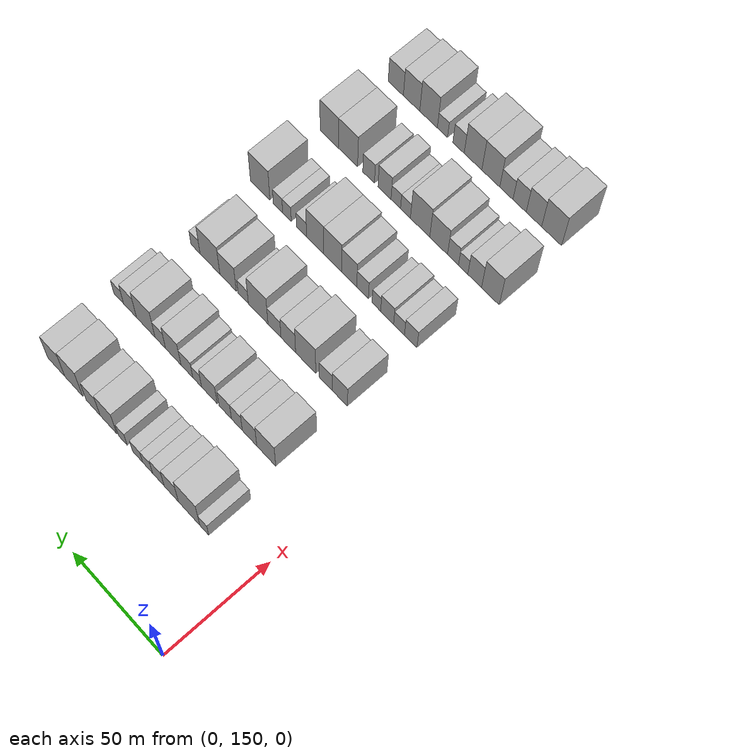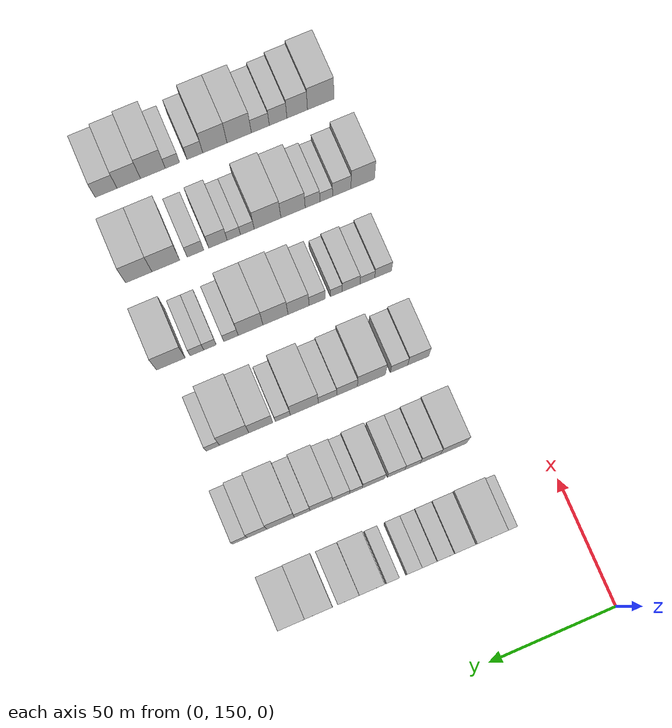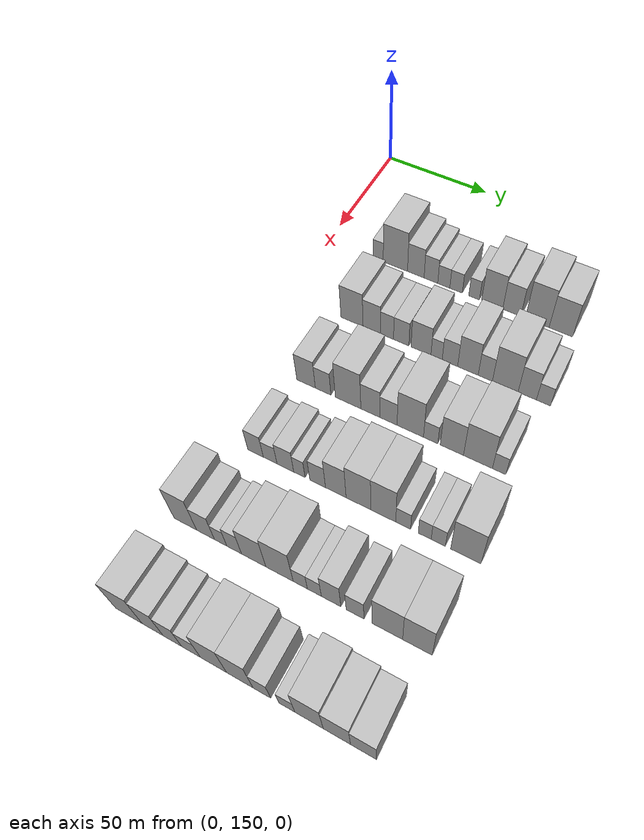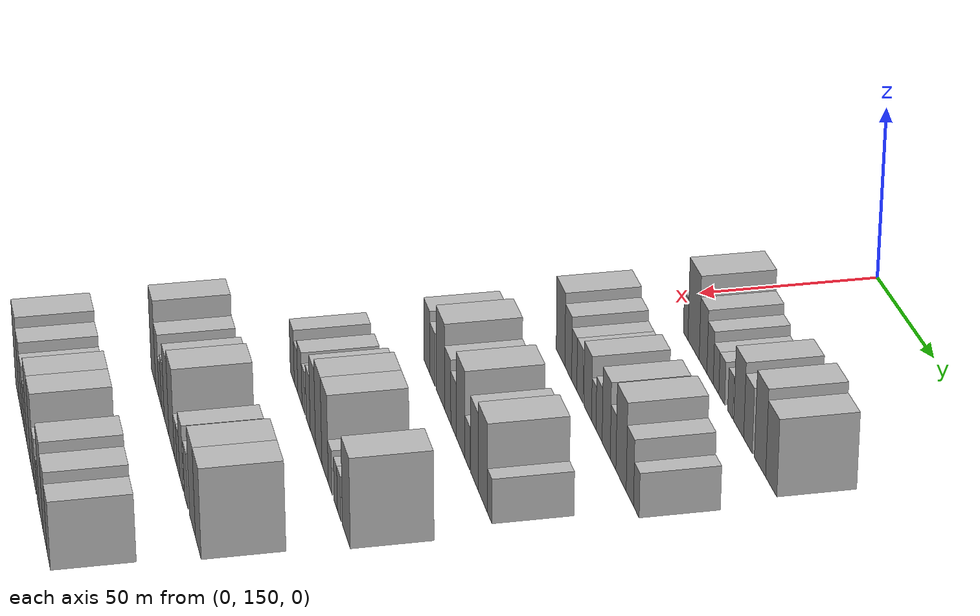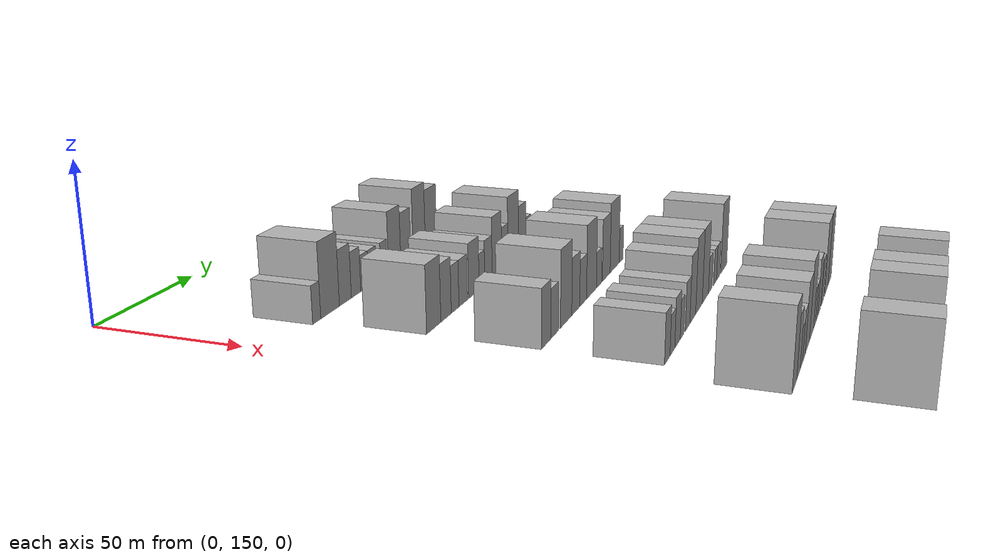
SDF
<sdf version="1.6">
 <world name="default">
  <model name="building_76">
   <static>1</static>
   <pose>50.0000 174.6142 0 0.000000 0.000000 0.000000</pose>
   <link name="link">
    <pose>0 0 6.00 0 0 0</pose>
    <collision name="collision"><geometry><box><size>20.0000 4.9379 12.0000</size></box></geometry></collision>
    <visual name="visual">
     <cast_shadows>0</cast_shadows>
     <geometry><box><size>20.0000 4.9379 12.0000</size></box></geometry>
     <material>
      <script>
       <uri>model://HANNAS_wall/materials/scripts</uri>
       <uri>model://HANNAS_wall/materials/textures</uri>
       <name>vrc/HANNAS_wall</name>
      </script>
     </material>
    </visual>
   </link>
  </model>
  <model name="building_77">
   <static>1</static>
   <pose>50.0000 183.0094 0 0.000000 0.000000 0.000000</pose>
   <link name="link">
    <pose>0 0 12.00 0 0 0</pose>
    <collision name="collision"><geometry><box><size>20.0000 11.8525 24.0000</size></box></geometry></collision>
    <visual name="visual">
     <cast_shadows>0</cast_shadows>
     <geometry><box><size>20.0000 11.8525 24.0000</size></box></geometry>
     <material>
      <script>
       <uri>model://HANNAS_wall/materials/scripts</uri>
       <uri>model://HANNAS_wall/materials/textures</uri>
       <name>vrc/HANNAS_wall</name>
      </script>
     </material>
    </visual>
   </link>
  </model>
  <model name="building_78">
   <static>1</static>
   <pose>50.0000 192.9202 0 0.000000 0.000000 0.000000</pose>
   <link name="link">
    <pose>0 0 9.00 0 0 0</pose>
    <collision name="collision"><geometry><box><size>20.0000 7.9690 18.0000</size></box></geometry></collision>
    <visual name="visual">
     <cast_shadows>0</cast_shadows>
     <geometry><box><size>20.0000 7.9690 18.0000</size></box></geometry>
     <material>
      <script>
       <uri>model://HANNAS_wall/materials/scripts</uri>
       <uri>model://HANNAS_wall/materials/textures</uri>
       <name>vrc/HANNAS_wall</name>
      </script>
     </material>
    </visual>
   </link>
  </model>
  <model name="building_79">
   <static>1</static>
   <pose>50.0000 200.1594 0 0.000000 0.000000 0.000000</pose>
   <link name="link">
    <pose>0 0 7.50 0 0 0</pose>
    <collision name="collision"><geometry><box><size>20.0000 6.5095 15.0000</size></box></geometry></collision>
    <visual name="visual">
     <cast_shadows>0</cast_shadows>
     <geometry><box><size>20.0000 6.5095 15.0000</size></box></geometry>
     <material>
      <script>
       <uri>model://HANNAS_wall/materials/scripts</uri>
       <uri>model://HANNAS_wall/materials/textures</uri>
       <name>vrc/HANNAS_wall</name>
      </script>
     </material>
    </visual>
   </link>
  </model>
  <model name="building_80">
   <static>1</static>
   <pose>50.0000 206.2583 0 0.000000 0.000000 0.000000</pose>
   <link name="link">
    <pose>0 0 6.00 0 0 0</pose>
    <collision name="collision"><geometry><box><size>20.0000 5.6883 12.0000</size></box></geometry></collision>
    <visual name="visual">
     <cast_shadows>0</cast_shadows>
     <geometry><box><size>20.0000 5.6883 12.0000</size></box></geometry>
     <material>
      <script>
       <uri>model://HANNAS_wall/materials/scripts</uri>
       <uri>model://HANNAS_wall/materials/textures</uri>
       <name>vrc/HANNAS_wall</name>
      </script>
     </material>
    </visual>
   </link>
  </model>
  <model name="building_81">
   <static>1</static>
   <pose>50.0000 212.0205 0 0.000000 0.000000 0.000000</pose>
   <link name="link">
    <pose>0 0 6.00 0 0 0</pose>
    <collision name="collision"><geometry><box><size>20.0000 5.8362 12.0000</size></box></geometry></collision>
    <visual name="visual">
     <cast_shadows>0</cast_shadows>
     <geometry><box><size>20.0000 5.8362 12.0000</size></box></geometry>
     <material>
      <script>
       <uri>model://HANNAS_wall/materials/scripts</uri>
       <uri>model://HANNAS_wall/materials/textures</uri>
       <name>vrc/HANNAS_wall</name>
      </script>
     </material>
    </visual>
   </link>
  </model>
  <model name="building_82">
   <static>1</static>
   <pose>50.0000 220.4087 0 0.000000 0.000000 0.000000</pose>
   <link name="link">
    <pose>0 0 6.00 0 0 0</pose>
    <collision name="collision"><geometry><box><size>20.0000 4.9402 12.0000</size></box></geometry></collision>
    <visual name="visual">
     <cast_shadows>0</cast_shadows>
     <geometry><box><size>20.0000 4.9402 12.0000</size></box></geometry>
     <material>
      <script>
       <uri>model://HANNAS_wall/materials/scripts</uri>
       <uri>model://HANNAS_wall/materials/textures</uri>
       <name>vrc/HANNAS_wall</name>
      </script>
     </material>
    </visual>
   </link>
  </model>
  <model name="building_83">
   <static>1</static>
   <pose>50.0000 228.6962 0 0.000000 0.000000 0.000000</pose>
   <link name="link">
    <pose>0 0 10.50 0 0 0</pose>
    <collision name="collision"><geometry><box><size>20.0000 9.6349 21.0000</size></box></geometry></collision>
    <visual name="visual">
     <cast_shadows>0</cast_shadows>
     <geometry><box><size>20.0000 9.6349 21.0000</size></box></geometry>
     <material>
      <script>
       <uri>model://HANNAS_wall/materials/scripts</uri>
       <uri>model://HANNAS_wall/materials/textures</uri>
       <name>vrc/HANNAS_wall</name>
      </script>
     </material>
    </visual>
   </link>
  </model>
  <model name="building_84">
   <static>1</static>
   <pose>50.0000 237.5897 0 0.000000 0.000000 0.000000</pose>
   <link name="link">
    <pose>0 0 9.00 0 0 0</pose>
    <collision name="collision"><geometry><box><size>20.0000 8.1520 18.0000</size></box></geometry></collision>
    <visual name="visual">
     <cast_shadows>0</cast_shadows>
     <geometry><box><size>20.0000 8.1520 18.0000</size></box></geometry>
     <material>
      <script>
       <uri>model://HANNAS_wall/materials/scripts</uri>
       <uri>model://HANNAS_wall/materials/textures</uri>
       <name>vrc/HANNAS_wall</name>
      </script>
     </material>
    </visual>
   </link>
  </model>
  <model name="building_85">
   <static>1</static>
   <pose>50.0000 248.8971 0 0.000000 0.000000 0.000000</pose>
   <link name="link">
    <pose>0 0 12.00 0 0 0</pose>
    <collision name="collision"><geometry><box><size>20.0000 10.4628 24.0000</size></box></geometry></collision>
    <visual name="visual">
     <cast_shadows>0</cast_shadows>
     <geometry><box><size>20.0000 10.4628 24.0000</size></box></geometry>
     <material>
      <script>
       <uri>model://HANNAS_wall/materials/scripts</uri>
       <uri>model://HANNAS_wall/materials/textures</uri>
       <name>vrc/HANNAS_wall</name>
      </script>
     </material>
    </visual>
   </link>
  </model>
  <model name="building_86">
   <static>1</static>
   <pose>50.0000 259.2535 0 0.000000 0.000000 0.000000</pose>
   <link name="link">
    <pose>0 0 10.50 0 0 0</pose>
    <collision name="collision"><geometry><box><size>20.0000 10.2500 21.0000</size></box></geometry></collision>
    <visual name="visual">
     <cast_shadows>0</cast_shadows>
     <geometry><box><size>20.0000 10.2500 21.0000</size></box></geometry>
     <material>
      <script>
       <uri>model://HANNAS_wall/materials/scripts</uri>
       <uri>model://HANNAS_wall/materials/textures</uri>
       <name>vrc/HANNAS_wall</name>
      </script>
     </material>
    </visual>
   </link>
  </model>
  <model name="building_203">
   <static>1</static>
   <pose>85.0000 180.6610 0 0.000000 0.000000 0.000000</pose>
   <link name="link">
    <pose>0 0 10.50 0 0 0</pose>
    <collision name="collision"><geometry><box><size>20.0000 10.4393 21.0000</size></box></geometry></collision>
    <visual name="visual">
     <cast_shadows>0</cast_shadows>
     <geometry><box><size>20.0000 10.4393 21.0000</size></box></geometry>
     <material>
      <script>
       <uri>model://HANNAS_wall/materials/scripts</uri>
       <uri>model://HANNAS_wall/materials/textures</uri>
       <name>vrc/HANNAS_wall</name>
      </script>
     </material>
    </visual>
   </link>
  </model>
  <model name="building_204">
   <static>1</static>
   <pose>85.0000 189.8858 0 0.000000 0.000000 0.000000</pose>
   <link name="link">
    <pose>0 0 9.00 0 0 0</pose>
    <collision name="collision"><geometry><box><size>20.0000 8.0103 18.0000</size></box></geometry></collision>
    <visual name="visual">
     <cast_shadows>0</cast_shadows>
     <geometry><box><size>20.0000 8.0103 18.0000</size></box></geometry>
     <material>
      <script>
       <uri>model://HANNAS_wall/materials/scripts</uri>
       <uri>model://HANNAS_wall/materials/textures</uri>
       <name>vrc/HANNAS_wall</name>
      </script>
     </material>
    </visual>
   </link>
  </model>
  <model name="building_205">
   <static>1</static>
   <pose>85.0000 196.9452 0 0.000000 0.000000 0.000000</pose>
   <link name="link">
    <pose>0 0 7.50 0 0 0</pose>
    <collision name="collision"><geometry><box><size>20.0000 6.1084 15.0000</size></box></geometry></collision>
    <visual name="visual">
     <cast_shadows>0</cast_shadows>
     <geometry><box><size>20.0000 6.1084 15.0000</size></box></geometry>
     <material>
      <script>
       <uri>model://HANNAS_wall/materials/scripts</uri>
       <uri>model://HANNAS_wall/materials/textures</uri>
       <name>vrc/HANNAS_wall</name>
      </script>
     </material>
    </visual>
   </link>
  </model>
  <model name="building_206">
   <static>1</static>
   <pose>85.0000 203.4904 0 0.000000 0.000000 0.000000</pose>
   <link name="link">
    <pose>0 0 7.50 0 0 0</pose>
    <collision name="collision"><geometry><box><size>20.0000 6.9820 15.0000</size></box></geometry></collision>
    <visual name="visual">
     <cast_shadows>0</cast_shadows>
     <geometry><box><size>20.0000 6.9820 15.0000</size></box></geometry>
     <material>
      <script>
       <uri>model://HANNAS_wall/materials/scripts</uri>
       <uri>model://HANNAS_wall/materials/textures</uri>
       <name>vrc/HANNAS_wall</name>
      </script>
     </material>
    </visual>
   </link>
  </model>
  <model name="building_207">
   <static>1</static>
   <pose>85.0000 212.4472 0 0.000000 0.000000 0.000000</pose>
   <link name="link">
    <pose>0 0 9.00 0 0 0</pose>
    <collision name="collision"><geometry><box><size>20.0000 8.9316 18.0000</size></box></geometry></collision>
    <visual name="visual">
     <cast_shadows>0</cast_shadows>
     <geometry><box><size>20.0000 8.9316 18.0000</size></box></geometry>
     <material>
      <script>
       <uri>model://HANNAS_wall/materials/scripts</uri>
       <uri>model://HANNAS_wall/materials/textures</uri>
       <name>vrc/HANNAS_wall</name>
      </script>
     </material>
    </visual>
   </link>
  </model>
  <model name="building_208">
   <static>1</static>
   <pose>85.0000 219.4052 0 0.000000 0.000000 0.000000</pose>
   <link name="link">
    <pose>0 0 6.00 0 0 0</pose>
    <collision name="collision"><geometry><box><size>20.0000 4.9845 12.0000</size></box></geometry></collision>
    <visual name="visual">
     <cast_shadows>0</cast_shadows>
     <geometry><box><size>20.0000 4.9845 12.0000</size></box></geometry>
     <material>
      <script>
       <uri>model://HANNAS_wall/materials/scripts</uri>
       <uri>model://HANNAS_wall/materials/textures</uri>
       <name>vrc/HANNAS_wall</name>
      </script>
     </material>
    </visual>
   </link>
  </model>
  <model name="building_209">
   <static>1</static>
   <pose>85.0000 225.2908 0 0.000000 0.000000 0.000000</pose>
   <link name="link">
    <pose>0 0 7.50 0 0 0</pose>
    <collision name="collision"><geometry><box><size>20.0000 6.7866 15.0000</size></box></geometry></collision>
    <visual name="visual">
     <cast_shadows>0</cast_shadows>
     <geometry><box><size>20.0000 6.7866 15.0000</size></box></geometry>
     <material>
      <script>
       <uri>model://HANNAS_wall/materials/scripts</uri>
       <uri>model://HANNAS_wall/materials/textures</uri>
       <name>vrc/HANNAS_wall</name>
      </script>
     </material>
    </visual>
   </link>
  </model>
  <model name="building_210">
   <static>1</static>
   <pose>85.0000 233.1479 0 0.000000 0.000000 0.000000</pose>
   <link name="link">
    <pose>0 0 10.50 0 0 0</pose>
    <collision name="collision"><geometry><box><size>20.0000 8.9277 21.0000</size></box></geometry></collision>
    <visual name="visual">
     <cast_shadows>0</cast_shadows>
     <geometry><box><size>20.0000 8.9277 21.0000</size></box></geometry>
     <material>
      <script>
       <uri>model://HANNAS_wall/materials/scripts</uri>
       <uri>model://HANNAS_wall/materials/textures</uri>
       <name>vrc/HANNAS_wall</name>
      </script>
     </material>
    </visual>
   </link>
  </model>
  <model name="building_211">
   <static>1</static>
   <pose>85.0000 240.6714 0 0.000000 0.000000 0.000000</pose>
   <link name="link">
    <pose>0 0 7.50 0 0 0</pose>
    <collision name="collision"><geometry><box><size>20.0000 6.1194 15.0000</size></box></geometry></collision>
    <visual name="visual">
     <cast_shadows>0</cast_shadows>
     <geometry><box><size>20.0000 6.1194 15.0000</size></box></geometry>
     <material>
      <script>
       <uri>model://HANNAS_wall/materials/scripts</uri>
       <uri>model://HANNAS_wall/materials/textures</uri>
       <name>vrc/HANNAS_wall</name>
      </script>
     </material>
    </visual>
   </link>
  </model>
  <model name="building_212">
   <static>1</static>
   <pose>85.0000 249.1697 0 0.000000 0.000000 0.000000</pose>
   <link name="link">
    <pose>0 0 12.00 0 0 0</pose>
    <collision name="collision"><geometry><box><size>20.0000 10.8773 24.0000</size></box></geometry></collision>
    <visual name="visual">
     <cast_shadows>0</cast_shadows>
     <geometry><box><size>20.0000 10.8773 24.0000</size></box></geometry>
     <material>
      <script>
       <uri>model://HANNAS_wall/materials/scripts</uri>
       <uri>model://HANNAS_wall/materials/textures</uri>
       <name>vrc/HANNAS_wall</name>
      </script>
     </material>
    </visual>
   </link>
  </model>
  <model name="building_213">
   <static>1</static>
   <pose>85.0000 258.4288 0 0.000000 0.000000 0.000000</pose>
   <link name="link">
    <pose>0 0 9.00 0 0 0</pose>
    <collision name="collision"><geometry><box><size>20.0000 7.6409 18.0000</size></box></geometry></collision>
    <visual name="visual">
     <cast_shadows>0</cast_shadows>
     <geometry><box><size>20.0000 7.6409 18.0000</size></box></geometry>
     <material>
      <script>
       <uri>model://HANNAS_wall/materials/scripts</uri>
       <uri>model://HANNAS_wall/materials/textures</uri>
       <name>vrc/HANNAS_wall</name>
      </script>
     </material>
    </visual>
   </link>
  </model>
  <model name="building_214">
   <static>1</static>
   <pose>85.0000 265.1545 0 0.000000 0.000000 0.000000</pose>
   <link name="link">
    <pose>0 0 6.00 0 0 0</pose>
    <collision name="collision"><geometry><box><size>20.0000 5.8104 12.0000</size></box></geometry></collision>
    <visual name="visual">
     <cast_shadows>0</cast_shadows>
     <geometry><box><size>20.0000 5.8104 12.0000</size></box></geometry>
     <material>
      <script>
       <uri>model://HANNAS_wall/materials/scripts</uri>
       <uri>model://HANNAS_wall/materials/textures</uri>
       <name>vrc/HANNAS_wall</name>
      </script>
     </material>
    </visual>
   </link>
  </model>
  <model name="building_333">
   <static>1</static>
   <pose>120.0000 179.2663 0 0.000000 0.000000 0.000000</pose>
   <link name="link">
    <pose>0 0 9.00 0 0 0</pose>
    <collision name="collision"><geometry><box><size>20.0000 8.4396 18.0000</size></box></geometry></collision>
    <visual name="visual">
     <cast_shadows>0</cast_shadows>
     <geometry><box><size>20.0000 8.4396 18.0000</size></box></geometry>
     <material>
      <script>
       <uri>model://HANNAS_wall/materials/scripts</uri>
       <uri>model://HANNAS_wall/materials/textures</uri>
       <name>vrc/HANNAS_wall</name>
      </script>
     </material>
    </visual>
   </link>
  </model>
  <model name="building_334">
   <static>1</static>
   <pose>120.0000 186.9773 0 0.000000 0.000000 0.000000</pose>
   <link name="link">
    <pose>0 0 7.50 0 0 0</pose>
    <collision name="collision"><geometry><box><size>20.0000 6.9825 15.0000</size></box></geometry></collision>
    <visual name="visual">
     <cast_shadows>0</cast_shadows>
     <geometry><box><size>20.0000 6.9825 15.0000</size></box></geometry>
     <material>
      <script>
       <uri>model://HANNAS_wall/materials/scripts</uri>
       <uri>model://HANNAS_wall/materials/textures</uri>
       <name>vrc/HANNAS_wall</name>
      </script>
     </material>
    </visual>
   </link>
  </model>
  <model name="building_335">
   <static>1</static>
   <pose>120.0000 198.1035 0 0.000000 0.000000 0.000000</pose>
   <link name="link">
    <pose>0 0 12.00 0 0 0</pose>
    <collision name="collision"><geometry><box><size>20.0000 11.2697 24.0000</size></box></geometry></collision>
    <visual name="visual">
     <cast_shadows>0</cast_shadows>
     <geometry><box><size>20.0000 11.2697 24.0000</size></box></geometry>
     <material>
      <script>
       <uri>model://HANNAS_wall/materials/scripts</uri>
       <uri>model://HANNAS_wall/materials/textures</uri>
       <name>vrc/HANNAS_wall</name>
      </script>
     </material>
    </visual>
   </link>
  </model>
  <model name="building_336">
   <static>1</static>
   <pose>120.0000 207.8507 0 0.000000 0.000000 0.000000</pose>
   <link name="link">
    <pose>0 0 9.00 0 0 0</pose>
    <collision name="collision"><geometry><box><size>20.0000 8.2248 18.0000</size></box></geometry></collision>
    <visual name="visual">
     <cast_shadows>0</cast_shadows>
     <geometry><box><size>20.0000 8.2248 18.0000</size></box></geometry>
     <material>
      <script>
       <uri>model://HANNAS_wall/materials/scripts</uri>
       <uri>model://HANNAS_wall/materials/textures</uri>
       <name>vrc/HANNAS_wall</name>
      </script>
     </material>
    </visual>
   </link>
  </model>
  <model name="building_337">
   <static>1</static>
   <pose>120.0000 215.6633 0 0.000000 0.000000 0.000000</pose>
   <link name="link">
    <pose>0 0 7.50 0 0 0</pose>
    <collision name="collision"><geometry><box><size>20.0000 7.4002 15.0000</size></box></geometry></collision>
    <visual name="visual">
     <cast_shadows>0</cast_shadows>
     <geometry><box><size>20.0000 7.4002 15.0000</size></box></geometry>
     <material>
      <script>
       <uri>model://HANNAS_wall/materials/scripts</uri>
       <uri>model://HANNAS_wall/materials/textures</uri>
       <name>vrc/HANNAS_wall</name>
      </script>
     </material>
    </visual>
   </link>
  </model>
  <model name="building_338">
   <static>1</static>
   <pose>120.0000 224.9422 0 0.000000 0.000000 0.000000</pose>
   <link name="link">
    <pose>0 0 12.00 0 0 0</pose>
    <collision name="collision"><geometry><box><size>20.0000 11.1576 24.0000</size></box></geometry></collision>
    <visual name="visual">
     <cast_shadows>0</cast_shadows>
     <geometry><box><size>20.0000 11.1576 24.0000</size></box></geometry>
     <material>
      <script>
       <uri>model://HANNAS_wall/materials/scripts</uri>
       <uri>model://HANNAS_wall/materials/textures</uri>
       <name>vrc/HANNAS_wall</name>
      </script>
     </material>
    </visual>
   </link>
  </model>
  <model name="building_339">
   <static>1</static>
   <pose>120.0000 233.5014 0 0.000000 0.000000 0.000000</pose>
   <link name="link">
    <pose>0 0 6.00 0 0 0</pose>
    <collision name="collision"><geometry><box><size>20.0000 5.9607 12.0000</size></box></geometry></collision>
    <visual name="visual">
     <cast_shadows>0</cast_shadows>
     <geometry><box><size>20.0000 5.9607 12.0000</size></box></geometry>
     <material>
      <script>
       <uri>model://HANNAS_wall/materials/scripts</uri>
       <uri>model://HANNAS_wall/materials/textures</uri>
       <name>vrc/HANNAS_wall</name>
      </script>
     </material>
    </visual>
   </link>
  </model>
  <model name="building_340">
   <static>1</static>
   <pose>120.0000 242.2394 0 0.000000 0.000000 0.000000</pose>
   <link name="link">
    <pose>0 0 10.50 0 0 0</pose>
    <collision name="collision"><geometry><box><size>20.0000 9.5153 21.0000</size></box></geometry></collision>
    <visual name="visual">
     <cast_shadows>0</cast_shadows>
     <geometry><box><size>20.0000 9.5153 21.0000</size></box></geometry>
     <material>
      <script>
       <uri>model://HANNAS_wall/materials/scripts</uri>
       <uri>model://HANNAS_wall/materials/textures</uri>
       <name>vrc/HANNAS_wall</name>
      </script>
     </material>
    </visual>
   </link>
  </model>
  <model name="building_341">
   <static>1</static>
   <pose>120.0000 252.8140 0 0.000000 0.000000 0.000000</pose>
   <link name="link">
    <pose>0 0 12.00 0 0 0</pose>
    <collision name="collision"><geometry><box><size>20.0000 11.6339 24.0000</size></box></geometry></collision>
    <visual name="visual">
     <cast_shadows>0</cast_shadows>
     <geometry><box><size>20.0000 11.6339 24.0000</size></box></geometry>
     <material>
      <script>
       <uri>model://HANNAS_wall/materials/scripts</uri>
       <uri>model://HANNAS_wall/materials/textures</uri>
       <name>vrc/HANNAS_wall</name>
      </script>
     </material>
    </visual>
   </link>
  </model>
  <model name="building_342">
   <static>1</static>
   <pose>120.0000 261.3128 0 0.000000 0.000000 0.000000</pose>
   <link name="link">
    <pose>0 0 6.00 0 0 0</pose>
    <collision name="collision"><geometry><box><size>20.0000 5.3636 12.0000</size></box></geometry></collision>
    <visual name="visual">
     <cast_shadows>0</cast_shadows>
     <geometry><box><size>20.0000 5.3636 12.0000</size></box></geometry>
     <material>
      <script>
       <uri>model://HANNAS_wall/materials/scripts</uri>
       <uri>model://HANNAS_wall/materials/textures</uri>
       <name>vrc/HANNAS_wall</name>
      </script>
     </material>
    </visual>
   </link>
  </model>
  <model name="building_453">
   <static>1</static>
   <pose>155.0000 178.1358 0 0.000000 0.000000 0.000000</pose>
   <link name="link">
    <pose>0 0 7.50 0 0 0</pose>
    <collision name="collision"><geometry><box><size>20.0000 6.8235 15.0000</size></box></geometry></collision>
    <visual name="visual">
     <cast_shadows>0</cast_shadows>
     <geometry><box><size>20.0000 6.8235 15.0000</size></box></geometry>
     <material>
      <script>
       <uri>model://HANNAS_wall/materials/scripts</uri>
       <uri>model://HANNAS_wall/materials/textures</uri>
       <name>vrc/HANNAS_wall</name>
      </script>
     </material>
    </visual>
   </link>
  </model>
  <model name="building_454">
   <static>1</static>
   <pose>155.0000 184.5303 0 0.000000 0.000000 0.000000</pose>
   <link name="link">
    <pose>0 0 6.00 0 0 0</pose>
    <collision name="collision"><geometry><box><size>20.0000 5.9654 12.0000</size></box></geometry></collision>
    <visual name="visual">
     <cast_shadows>0</cast_shadows>
     <geometry><box><size>20.0000 5.9654 12.0000</size></box></geometry>
     <material>
      <script>
       <uri>model://HANNAS_wall/materials/scripts</uri>
       <uri>model://HANNAS_wall/materials/textures</uri>
       <name>vrc/HANNAS_wall</name>
      </script>
     </material>
    </visual>
   </link>
  </model>
  <model name="building_455">
   <static>1</static>
   <pose>155.0000 191.0997 0 0.000000 0.000000 0.000000</pose>
   <link name="link">
    <pose>0 0 7.50 0 0 0</pose>
    <collision name="collision"><geometry><box><size>20.0000 7.1734 15.0000</size></box></geometry></collision>
    <visual name="visual">
     <cast_shadows>0</cast_shadows>
     <geometry><box><size>20.0000 7.1734 15.0000</size></box></geometry>
     <material>
      <script>
       <uri>model://HANNAS_wall/materials/scripts</uri>
       <uri>model://HANNAS_wall/materials/textures</uri>
       <name>vrc/HANNAS_wall</name>
      </script>
     </material>
    </visual>
   </link>
  </model>
  <model name="building_456">
   <static>1</static>
   <pose>155.0000 197.1026 0 0.000000 0.000000 0.000000</pose>
   <link name="link">
    <pose>0 0 6.00 0 0 0</pose>
    <collision name="collision"><geometry><box><size>20.0000 4.8324 12.0000</size></box></geometry></collision>
    <visual name="visual">
     <cast_shadows>0</cast_shadows>
     <geometry><box><size>20.0000 4.8324 12.0000</size></box></geometry>
     <material>
      <script>
       <uri>model://HANNAS_wall/materials/scripts</uri>
       <uri>model://HANNAS_wall/materials/textures</uri>
       <name>vrc/HANNAS_wall</name>
      </script>
     </material>
    </visual>
   </link>
  </model>
  <model name="building_457">
   <static>1</static>
   <pose>155.0000 204.8015 0 0.000000 0.000000 0.000000</pose>
   <link name="link">
    <pose>0 0 7.50 0 0 0</pose>
    <collision name="collision"><geometry><box><size>20.0000 6.5655 15.0000</size></box></geometry></collision>
    <visual name="visual">
     <cast_shadows>0</cast_shadows>
     <geometry><box><size>20.0000 6.5655 15.0000</size></box></geometry>
     <material>
      <script>
       <uri>model://HANNAS_wall/materials/scripts</uri>
       <uri>model://HANNAS_wall/materials/textures</uri>
       <name>vrc/HANNAS_wall</name>
      </script>
     </material>
    </visual>
   </link>
  </model>
  <model name="building_458">
   <static>1</static>
   <pose>155.0000 212.3435 0 0.000000 0.000000 0.000000</pose>
   <link name="link">
    <pose>0 0 10.50 0 0 0</pose>
    <collision name="collision"><geometry><box><size>20.0000 8.5185 21.0000</size></box></geometry></collision>
    <visual name="visual">
     <cast_shadows>0</cast_shadows>
     <geometry><box><size>20.0000 8.5185 21.0000</size></box></geometry>
     <material>
      <script>
       <uri>model://HANNAS_wall/materials/scripts</uri>
       <uri>model://HANNAS_wall/materials/textures</uri>
       <name>vrc/HANNAS_wall</name>
      </script>
     </material>
    </visual>
   </link>
  </model>
  <model name="building_459">
   <static>1</static>
   <pose>155.0000 221.6552 0 0.000000 0.000000 0.000000</pose>
   <link name="link">
    <pose>0 0 12.00 0 0 0</pose>
    <collision name="collision"><geometry><box><size>20.0000 10.1048 24.0000</size></box></geometry></collision>
    <visual name="visual">
     <cast_shadows>0</cast_shadows>
     <geometry><box><size>20.0000 10.1048 24.0000</size></box></geometry>
     <material>
      <script>
       <uri>model://HANNAS_wall/materials/scripts</uri>
       <uri>model://HANNAS_wall/materials/textures</uri>
       <name>vrc/HANNAS_wall</name>
      </script>
     </material>
    </visual>
   </link>
  </model>
  <model name="building_460">
   <static>1</static>
   <pose>155.0000 231.6649 0 0.000000 0.000000 0.000000</pose>
   <link name="link">
    <pose>0 0 12.00 0 0 0</pose>
    <collision name="collision"><geometry><box><size>20.0000 9.9147 24.0000</size></box></geometry></collision>
    <visual name="visual">
     <cast_shadows>0</cast_shadows>
     <geometry><box><size>20.0000 9.9147 24.0000</size></box></geometry>
     <material>
      <script>
       <uri>model://HANNAS_wall/materials/scripts</uri>
       <uri>model://HANNAS_wall/materials/textures</uri>
       <name>vrc/HANNAS_wall</name>
      </script>
     </material>
    </visual>
   </link>
  </model>
  <model name="building_461">
   <static>1</static>
   <pose>155.0000 239.5283 0 0.000000 0.000000 0.000000</pose>
   <link name="link">
    <pose>0 0 6.00 0 0 0</pose>
    <collision name="collision"><geometry><box><size>20.0000 5.8120 12.0000</size></box></geometry></collision>
    <visual name="visual">
     <cast_shadows>0</cast_shadows>
     <geometry><box><size>20.0000 5.8120 12.0000</size></box></geometry>
     <material>
      <script>
       <uri>model://HANNAS_wall/materials/scripts</uri>
       <uri>model://HANNAS_wall/materials/textures</uri>
       <name>vrc/HANNAS_wall</name>
      </script>
     </material>
    </visual>
   </link>
  </model>
  <model name="building_462">
   <static>1</static>
   <pose>155.0000 247.9316 0 0.000000 0.000000 0.000000</pose>
   <link name="link">
    <pose>0 0 6.00 0 0 0</pose>
    <collision name="collision"><geometry><box><size>20.0000 4.9946 12.0000</size></box></geometry></collision>
    <visual name="visual">
     <cast_shadows>0</cast_shadows>
     <geometry><box><size>20.0000 4.9946 12.0000</size></box></geometry>
     <material>
      <script>
       <uri>model://HANNAS_wall/materials/scripts</uri>
       <uri>model://HANNAS_wall/materials/textures</uri>
       <name>vrc/HANNAS_wall</name>
      </script>
     </material>
    </visual>
   </link>
  </model>
  <model name="building_463">
   <static>1</static>
   <pose>155.0000 253.1535 0 0.000000 0.000000 0.000000</pose>
   <link name="link">
    <pose>0 0 6.00 0 0 0</pose>
    <collision name="collision"><geometry><box><size>20.0000 5.4492 12.0000</size></box></geometry></collision>
    <visual name="visual">
     <cast_shadows>0</cast_shadows>
     <geometry><box><size>20.0000 5.4492 12.0000</size></box></geometry>
     <material>
      <script>
       <uri>model://HANNAS_wall/materials/scripts</uri>
       <uri>model://HANNAS_wall/materials/textures</uri>
       <name>vrc/HANNAS_wall</name>
      </script>
     </material>
    </visual>
   </link>
  </model>
  <model name="building_464">
   <static>1</static>
   <pose>155.0000 263.6030 0 0.000000 0.000000 0.000000</pose>
   <link name="link">
    <pose>0 0 12.00 0 0 0</pose>
    <collision name="collision"><geometry><box><size>20.0000 11.4498 24.0000</size></box></geometry></collision>
    <visual name="visual">
     <cast_shadows>0</cast_shadows>
     <geometry><box><size>20.0000 11.4498 24.0000</size></box></geometry>
     <material>
      <script>
       <uri>model://HANNAS_wall/materials/scripts</uri>
       <uri>model://HANNAS_wall/materials/textures</uri>
       <name>vrc/HANNAS_wall</name>
      </script>
     </material>
    </visual>
   </link>
  </model>
  <model name="building_583">
   <static>1</static>
   <pose>190.0000 171.2518 0 0.000000 0.000000 0.000000</pose>
   <link name="link">
    <pose>0 0 12.00 0 0 0</pose>
    <collision name="collision"><geometry><box><size>20.0000 9.6351 24.0000</size></box></geometry></collision>
    <visual name="visual">
     <cast_shadows>0</cast_shadows>
     <geometry><box><size>20.0000 9.6351 24.0000</size></box></geometry>
     <material>
      <script>
       <uri>model://HANNAS_wall/materials/scripts</uri>
       <uri>model://HANNAS_wall/materials/textures</uri>
       <name>vrc/HANNAS_wall</name>
      </script>
     </material>
    </visual>
   </link>
  </model>
  <model name="building_584">
   <static>1</static>
   <pose>190.0000 179.8290 0 0.000000 0.000000 0.000000</pose>
   <link name="link">
    <pose>0 0 9.00 0 0 0</pose>
    <collision name="collision"><geometry><box><size>20.0000 7.5194 18.0000</size></box></geometry></collision>
    <visual name="visual">
     <cast_shadows>0</cast_shadows>
     <geometry><box><size>20.0000 7.5194 18.0000</size></box></geometry>
     <material>
      <script>
       <uri>model://HANNAS_wall/materials/scripts</uri>
       <uri>model://HANNAS_wall/materials/textures</uri>
       <name>vrc/HANNAS_wall</name>
      </script>
     </material>
    </visual>
   </link>
  </model>
  <model name="building_585">
   <static>1</static>
   <pose>190.0000 186.1575 0 0.000000 0.000000 0.000000</pose>
   <link name="link">
    <pose>0 0 6.00 0 0 0</pose>
    <collision name="collision"><geometry><box><size>20.0000 5.1376 12.0000</size></box></geometry></collision>
    <visual name="visual">
     <cast_shadows>0</cast_shadows>
     <geometry><box><size>20.0000 5.1376 12.0000</size></box></geometry>
     <material>
      <script>
       <uri>model://HANNAS_wall/materials/scripts</uri>
       <uri>model://HANNAS_wall/materials/textures</uri>
       <name>vrc/HANNAS_wall</name>
      </script>
     </material>
    </visual>
   </link>
  </model>
  <model name="building_586">
   <static>1</static>
   <pose>190.0000 191.7456 0 0.000000 0.000000 0.000000</pose>
   <link name="link">
    <pose>0 0 7.50 0 0 0</pose>
    <collision name="collision"><geometry><box><size>20.0000 6.0387 15.0000</size></box></geometry></collision>
    <visual name="visual">
     <cast_shadows>0</cast_shadows>
     <geometry><box><size>20.0000 6.0387 15.0000</size></box></geometry>
     <material>
      <script>
       <uri>model://HANNAS_wall/materials/scripts</uri>
       <uri>model://HANNAS_wall/materials/textures</uri>
       <name>vrc/HANNAS_wall</name>
      </script>
     </material>
    </visual>
   </link>
  </model>
  <model name="building_587">
   <static>1</static>
   <pose>190.0000 199.7181 0 0.000000 0.000000 0.000000</pose>
   <link name="link">
    <pose>0 0 10.50 0 0 0</pose>
    <collision name="collision"><geometry><box><size>20.0000 9.9063 21.0000</size></box></geometry></collision>
    <visual name="visual">
     <cast_shadows>0</cast_shadows>
     <geometry><box><size>20.0000 9.9063 21.0000</size></box></geometry>
     <material>
      <script>
       <uri>model://HANNAS_wall/materials/scripts</uri>
       <uri>model://HANNAS_wall/materials/textures</uri>
       <name>vrc/HANNAS_wall</name>
      </script>
     </material>
    </visual>
   </link>
  </model>
  <model name="building_588">
   <static>1</static>
   <pose>190.0000 210.1047 0 0.000000 0.000000 0.000000</pose>
   <link name="link">
    <pose>0 0 12.00 0 0 0</pose>
    <collision name="collision"><geometry><box><size>20.0000 10.8668 24.0000</size></box></geometry></collision>
    <visual name="visual">
     <cast_shadows>0</cast_shadows>
     <geometry><box><size>20.0000 10.8668 24.0000</size></box></geometry>
     <material>
      <script>
       <uri>model://HANNAS_wall/materials/scripts</uri>
       <uri>model://HANNAS_wall/materials/textures</uri>
       <name>vrc/HANNAS_wall</name>
      </script>
     </material>
    </visual>
   </link>
  </model>
  <model name="building_589">
   <static>1</static>
   <pose>190.0000 218.3206 0 0.000000 0.000000 0.000000</pose>
   <link name="link">
    <pose>0 0 6.00 0 0 0</pose>
    <collision name="collision"><geometry><box><size>20.0000 5.5650 12.0000</size></box></geometry></collision>
    <visual name="visual">
     <cast_shadows>0</cast_shadows>
     <geometry><box><size>20.0000 5.5650 12.0000</size></box></geometry>
     <material>
      <script>
       <uri>model://HANNAS_wall/materials/scripts</uri>
       <uri>model://HANNAS_wall/materials/textures</uri>
       <name>vrc/HANNAS_wall</name>
      </script>
     </material>
    </visual>
   </link>
  </model>
  <model name="building_590">
   <static>1</static>
   <pose>190.0000 223.8029 0 0.000000 0.000000 0.000000</pose>
   <link name="link">
    <pose>0 0 6.00 0 0 0</pose>
    <collision name="collision"><geometry><box><size>20.0000 5.3996 12.0000</size></box></geometry></collision>
    <visual name="visual">
     <cast_shadows>0</cast_shadows>
     <geometry><box><size>20.0000 5.3996 12.0000</size></box></geometry>
     <material>
      <script>
       <uri>model://HANNAS_wall/materials/scripts</uri>
       <uri>model://HANNAS_wall/materials/textures</uri>
       <name>vrc/HANNAS_wall</name>
      </script>
     </material>
    </visual>
   </link>
  </model>
  <model name="building_591">
   <static>1</static>
   <pose>190.0000 230.2383 0 0.000000 0.000000 0.000000</pose>
   <link name="link">
    <pose>0 0 9.00 0 0 0</pose>
    <collision name="collision"><geometry><box><size>20.0000 7.4712 18.0000</size></box></geometry></collision>
    <visual name="visual">
     <cast_shadows>0</cast_shadows>
     <geometry><box><size>20.0000 7.4712 18.0000</size></box></geometry>
     <material>
      <script>
       <uri>model://HANNAS_wall/materials/scripts</uri>
       <uri>model://HANNAS_wall/materials/textures</uri>
       <name>vrc/HANNAS_wall</name>
      </script>
     </material>
    </visual>
   </link>
  </model>
  <model name="building_592">
   <static>1</static>
   <pose>190.0000 239.3441 0 0.000000 0.000000 0.000000</pose>
   <link name="link">
    <pose>0 0 7.50 0 0 0</pose>
    <collision name="collision"><geometry><box><size>20.0000 6.7404 15.0000</size></box></geometry></collision>
    <visual name="visual">
     <cast_shadows>0</cast_shadows>
     <geometry><box><size>20.0000 6.7404 15.0000</size></box></geometry>
     <material>
      <script>
       <uri>model://HANNAS_wall/materials/scripts</uri>
       <uri>model://HANNAS_wall/materials/textures</uri>
       <name>vrc/HANNAS_wall</name>
      </script>
     </material>
    </visual>
   </link>
  </model>
  <model name="building_593">
   <static>1</static>
   <pose>190.0000 251.3078 0 0.000000 0.000000 0.000000</pose>
   <link name="link">
    <pose>0 0 12.00 0 0 0</pose>
    <collision name="collision"><geometry><box><size>20.0000 11.1869 24.0000</size></box></geometry></collision>
    <visual name="visual">
     <cast_shadows>0</cast_shadows>
     <geometry><box><size>20.0000 11.1869 24.0000</size></box></geometry>
     <material>
      <script>
       <uri>model://HANNAS_wall/materials/scripts</uri>
       <uri>model://HANNAS_wall/materials/textures</uri>
       <name>vrc/HANNAS_wall</name>
      </script>
     </material>
    </visual>
   </link>
  </model>
  <model name="building_594">
   <static>1</static>
   <pose>190.0000 262.2255 0 0.000000 0.000000 0.000000</pose>
   <link name="link">
    <pose>0 0 12.00 0 0 0</pose>
    <collision name="collision"><geometry><box><size>20.0000 10.6484 24.0000</size></box></geometry></collision>
    <visual name="visual">
     <cast_shadows>0</cast_shadows>
     <geometry><box><size>20.0000 10.6484 24.0000</size></box></geometry>
     <material>
      <script>
       <uri>model://HANNAS_wall/materials/scripts</uri>
       <uri>model://HANNAS_wall/materials/textures</uri>
       <name>vrc/HANNAS_wall</name>
      </script>
     </material>
    </visual>
   </link>
  </model>
  <model name="building_714">
   <static>1</static>
   <pose>225.0000 173.4923 0 0.000000 0.000000 0.000000</pose>
   <link name="link">
    <pose>0 0 12.00 0 0 0</pose>
    <collision name="collision"><geometry><box><size>20.0000 10.8684 24.0000</size></box></geometry></collision>
    <visual name="visual">
     <cast_shadows>0</cast_shadows>
     <geometry><box><size>20.0000 10.8684 24.0000</size></box></geometry>
     <material>
      <script>
       <uri>model://HANNAS_wall/materials/scripts</uri>
       <uri>model://HANNAS_wall/materials/textures</uri>
       <name>vrc/HANNAS_wall</name>
      </script>
     </material>
    </visual>
   </link>
  </model>
  <model name="building_715">
   <static>1</static>
   <pose>225.0000 183.1485 0 0.000000 0.000000 0.000000</pose>
   <link name="link">
    <pose>0 0 10.50 0 0 0</pose>
    <collision name="collision"><geometry><box><size>20.0000 8.4441 21.0000</size></box></geometry></collision>
    <visual name="visual">
     <cast_shadows>0</cast_shadows>
     <geometry><box><size>20.0000 8.4441 21.0000</size></box></geometry>
     <material>
      <script>
       <uri>model://HANNAS_wall/materials/scripts</uri>
       <uri>model://HANNAS_wall/materials/textures</uri>
       <name>vrc/HANNAS_wall</name>
      </script>
     </material>
    </visual>
   </link>
  </model>
  <model name="building_716">
   <static>1</static>
   <pose>225.0000 191.0122 0 0.000000 0.000000 0.000000</pose>
   <link name="link">
    <pose>0 0 9.00 0 0 0</pose>
    <collision name="collision"><geometry><box><size>20.0000 7.2833 18.0000</size></box></geometry></collision>
    <visual name="visual">
     <cast_shadows>0</cast_shadows>
     <geometry><box><size>20.0000 7.2833 18.0000</size></box></geometry>
     <material>
      <script>
       <uri>model://HANNAS_wall/materials/scripts</uri>
       <uri>model://HANNAS_wall/materials/textures</uri>
       <name>vrc/HANNAS_wall</name>
      </script>
     </material>
    </visual>
   </link>
  </model>
  <model name="building_717">
   <static>1</static>
   <pose>225.0000 198.3285 0 0.000000 0.000000 0.000000</pose>
   <link name="link">
    <pose>0 0 7.50 0 0 0</pose>
    <collision name="collision"><geometry><box><size>20.0000 7.3492 15.0000</size></box></geometry></collision>
    <visual name="visual">
     <cast_shadows>0</cast_shadows>
     <geometry><box><size>20.0000 7.3492 15.0000</size></box></geometry>
     <material>
      <script>
       <uri>model://HANNAS_wall/materials/scripts</uri>
       <uri>model://HANNAS_wall/materials/textures</uri>
       <name>vrc/HANNAS_wall</name>
      </script>
     </material>
    </visual>
   </link>
  </model>
  <model name="building_718">
   <static>1</static>
   <pose>225.0000 207.0042 0 0.000000 0.000000 0.000000</pose>
   <link name="link">
    <pose>0 0 12.00 0 0 0</pose>
    <collision name="collision"><geometry><box><size>20.0000 10.0023 24.0000</size></box></geometry></collision>
    <visual name="visual">
     <cast_shadows>0</cast_shadows>
     <geometry><box><size>20.0000 10.0023 24.0000</size></box></geometry>
     <material>
      <script>
       <uri>model://HANNAS_wall/materials/scripts</uri>
       <uri>model://HANNAS_wall/materials/textures</uri>
       <name>vrc/HANNAS_wall</name>
      </script>
     </material>
    </visual>
   </link>
  </model>
  <model name="building_719">
   <static>1</static>
   <pose>225.0000 216.9769 0 0.000000 0.000000 0.000000</pose>
   <link name="link">
    <pose>0 0 12.00 0 0 0</pose>
    <collision name="collision"><geometry><box><size>20.0000 9.9431 24.0000</size></box></geometry></collision>
    <visual name="visual">
     <cast_shadows>0</cast_shadows>
     <geometry><box><size>20.0000 9.9431 24.0000</size></box></geometry>
     <material>
      <script>
       <uri>model://HANNAS_wall/materials/scripts</uri>
       <uri>model://HANNAS_wall/materials/textures</uri>
       <name>vrc/HANNAS_wall</name>
      </script>
     </material>
    </visual>
   </link>
  </model>
  <model name="building_720">
   <static>1</static>
   <pose>225.0000 225.1842 0 0.000000 0.000000 0.000000</pose>
   <link name="link">
    <pose>0 0 7.50 0 0 0</pose>
    <collision name="collision"><geometry><box><size>20.0000 6.4715 15.0000</size></box></geometry></collision>
    <visual name="visual">
     <cast_shadows>0</cast_shadows>
     <geometry><box><size>20.0000 6.4715 15.0000</size></box></geometry>
     <material>
      <script>
       <uri>model://HANNAS_wall/materials/scripts</uri>
       <uri>model://HANNAS_wall/materials/textures</uri>
       <name>vrc/HANNAS_wall</name>
      </script>
     </material>
    </visual>
   </link>
  </model>
  <model name="building_721">
   <static>1</static>
   <pose>225.0000 234.3267 0 0.000000 0.000000 0.000000</pose>
   <link name="link">
    <pose>0 0 6.00 0 0 0</pose>
    <collision name="collision"><geometry><box><size>20.0000 5.8136 12.0000</size></box></geometry></collision>
    <visual name="visual">
     <cast_shadows>0</cast_shadows>
     <geometry><box><size>20.0000 5.8136 12.0000</size></box></geometry>
     <material>
      <script>
       <uri>model://HANNAS_wall/materials/scripts</uri>
       <uri>model://HANNAS_wall/materials/textures</uri>
       <name>vrc/HANNAS_wall</name>
      </script>
     </material>
    </visual>
   </link>
  </model>
  <model name="building_722">
   <static>1</static>
   <pose>225.0000 242.2840 0 0.000000 0.000000 0.000000</pose>
   <link name="link">
    <pose>0 0 12.00 0 0 0</pose>
    <collision name="collision"><geometry><box><size>20.0000 10.1010 24.0000</size></box></geometry></collision>
    <visual name="visual">
     <cast_shadows>0</cast_shadows>
     <geometry><box><size>20.0000 10.1010 24.0000</size></box></geometry>
     <material>
      <script>
       <uri>model://HANNAS_wall/materials/scripts</uri>
       <uri>model://HANNAS_wall/materials/textures</uri>
       <name>vrc/HANNAS_wall</name>
      </script>
     </material>
    </visual>
   </link>
  </model>
  <model name="building_723">
   <static>1</static>
   <pose>225.0000 252.0890 0 0.000000 0.000000 0.000000</pose>
   <link name="link">
    <pose>0 0 10.50 0 0 0</pose>
    <collision name="collision"><geometry><box><size>20.0000 9.5090 21.0000</size></box></geometry></collision>
    <visual name="visual">
     <cast_shadows>0</cast_shadows>
     <geometry><box><size>20.0000 9.5090 21.0000</size></box></geometry>
     <material>
      <script>
       <uri>model://HANNAS_wall/materials/scripts</uri>
       <uri>model://HANNAS_wall/materials/textures</uri>
       <name>vrc/HANNAS_wall</name>
      </script>
     </material>
    </visual>
   </link>
  </model>
  <model name="building_724">
   <static>1</static>
   <pose>225.0000 261.2862 0 0.000000 0.000000 0.000000</pose>
   <link name="link">
    <pose>0 0 9.00 0 0 0</pose>
    <collision name="collision"><geometry><box><size>20.0000 8.8856 18.0000</size></box></geometry></collision>
    <visual name="visual">
     <cast_shadows>0</cast_shadows>
     <geometry><box><size>20.0000 8.8856 18.0000</size></box></geometry>
     <material>
      <script>
       <uri>model://HANNAS_wall/materials/scripts</uri>
       <uri>model://HANNAS_wall/materials/textures</uri>
       <name>vrc/HANNAS_wall</name>
      </script>
     </material>
    </visual>
   </link>
  </model>
 </world>
</sdf>
